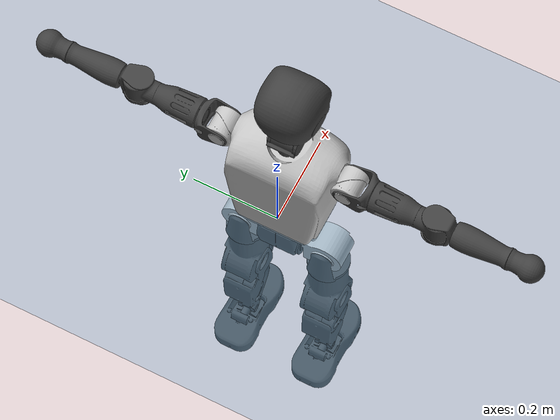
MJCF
<mujoco model="T1">
  <compiler angle="radian" assetdir="assets" balanceinertia="true" inertiafromgeom="false"/>

  <option timestep="0.005" density="1.2" viscosity="2e-05"/>

  <size nkey="1"/>

  <visual>
    <quality shadowsize="8192"/>
    <map shadowclip="0.5"/>
  </visual>

  <default>
    <default class="/">
      <joint armature="0.01" damping="0.01" frictionloss="0.1"/>
      <geom contype="0" conaffinity="0" group="1" solref="-1000 -80"/>
      <site size="0.01 0.005 0.005" group="5"/>
      <general forcelimited="true" biastype="affine" gainprm="25" biasprm="0 -25 -0.6"/>
      <default class="t1">
        <geom rgba="0.25 0.25 0.25 1"/>
        <default class="visual">
          <geom type="mesh" group="2"/>
        </default>
        <default class="collision">
          <geom group="3"/>
        </default>
        <default class="foot">
          <geom size="0.1115 0.05 0.015" type="box" condim="6" group="4" priority="1" solimp="0.015 1 0.015"/>
        </default>
        <default class="reward_collision_sphere">
          <geom group="5" rgba="1 0 0 1"/>
        </default>
      </default>
    </default>
  </default>

  <asset>
    <texture type="skybox" colorspace="auto" name="//unnamed_texture_0" builtin="gradient" rgb1="0.95 0.95 0.95" rgb2="0.95 0.95 0.95" width="100" height="600"/>
    <texture type="2d" colorspace="auto" name="texplane" builtin="checker" rgb1="0.345 0.575 0.748" rgb2="0.345 0.575 0.748" markrgb="1 1 1" width="512" height="512"/>
    <material name="MatPlane" class="/" texture="texplane" texuniform="true" texrepeat="2 2" specular="0.9"/>
    <mesh name="Trunk" class="/" file="Trunk.stl"/>
    <mesh name="H1" class="/" file="H1.stl"/>
    <mesh name="H2" class="/" file="H2.stl"/>
    <mesh name="AL1" class="/" file="AL1.stl"/>
    <mesh name="AL2" class="/" file="AL2.stl"/>
    <mesh name="AL3" class="/" file="AL3.stl"/>
    <mesh name="left_hand_link" class="/" file="left_hand_link.stl"/>
    <mesh name="AR1" class="/" file="AR1.stl"/>
    <mesh name="AR2" class="/" file="AR2.stl"/>
    <mesh name="AR3" class="/" file="AR3.stl"/>
    <mesh name="right_hand_link" class="/" file="right_hand_link.stl"/>
    <mesh name="Waist" class="/" file="Waist.stl"/>
    <mesh name="Hip_Pitch_Left" class="/" file="Hip_Pitch_Left.stl"/>
    <mesh name="Hip_Roll_Left" class="/" file="Hip_Roll_Left.stl"/>
    <mesh name="Hip_Yaw_Left" class="/" file="Hip_Yaw_Left.stl"/>
    <mesh name="Shank_Left" class="/" file="Shank_Left.stl"/>
    <mesh name="Ankle_Cross_Left" class="/" file="Ankle_Cross_Left.stl"/>
    <mesh name="left_foot_link" class="/" file="left_foot_link.stl"/>
    <mesh name="Hip_Pitch_Right" class="/" file="Hip_Pitch_Right.stl"/>
    <mesh name="Hip_Roll_Right" class="/" file="Hip_Roll_Right.stl"/>
    <mesh name="Hip_Yaw_Right" class="/" file="Hip_Yaw_Right.stl"/>
    <mesh name="Shank_Right" class="/" file="Shank_Right.stl"/>
    <mesh name="Ankle_Cross_Right" class="/" file="Ankle_Cross_Right.stl"/>
    <mesh name="right_foot_link" class="/" file="right_foot_link.stl"/>
  </asset>

  <worldbody>
    <geom name="floor" class="/" size="100 100 0.125" type="plane" group="0" material="MatPlane"/>
    <light name="toplight_shadow" class="/" pos="0 0 5" dir="0.0990148 0.0990148 -0.990148" type="directional" ambient="0.04 0.04 0.04" diffuse="0.55 0.55 0.55" specular="0.12 0.12 0.12"/>
    <light name="toplight_fill" class="/" pos="0 0 5" dir="0.0990148 0.0990148 -0.990148" type="directional" castshadow="false" ambient="0.04 0.04 0.04" diffuse="0.3 0.3 0.3" specular="0.08 0.08 0.08"/>
    <body name="trunk" childclass="t1" pos="3.86255e-05 0.000481916 -0.000375299" quat="1 -4.32131e-05 -2.77609e-05 2.07657e-05">
      <inertial pos="0.0426266 -0.000150187 0.105015" quat="0.999983 0.00123067 -0.00530839 -0.00220633" mass="8.99799" diaginertia="0.0284381 0.0610281 0.0555137"/>
      <joint name="//unnamed_joint_0" type="free" armature="0" damping="0" frictionloss="0"/>
      <geom name="//unnamed_geom_1" class="visual" rgba="0.76 0.76 0.76 1" mesh="Trunk"/>
      <geom name="//unnamed_geom_2" class="collision" size="0.0685349 0.0913798 0.13707" pos="0.0474858 0 0.119854" type="box"/>
      <geom name="//unnamed_geom_3" class="reward_collision_sphere" size="0.105087" pos="0.0474858 0 0.0998784"/>
      <geom name="//unnamed_geom_4" class="reward_collision_sphere" size="0.013707" pos="0.0474858 0.0808504 0"/>
      <geom name="//unnamed_geom_5" class="reward_collision_sphere" size="0.013707" pos="0.0474858 -0.0808504 0"/>
      <geom name="//unnamed_geom_6" class="reward_collision_sphere" size="0.013707" pos="0.0474858 0.101776 0.179781"/>
      <geom name="//unnamed_geom_7" class="reward_collision_sphere" size="0.013707" pos="0.0474858 -0.101776 0.179781"/>
      <site name="imu" pos="0.00015614 0.00134425 0.00354093" size="0.00913798"/>
      <camera name="track" pos="0 -1.90236 0" quat="0.707107 0.707107 0 0" mode="trackcom"/>
      <camera name="ego_camera" pos="0.0965545 0 0.419489" quat="-0.5 -0.5 0.5 0.5"/>
      <body name="H1" pos="0.0487566 0.000679871 0.242813" quat="1 -1.54973e-05 3.30653e-06 1.73178e-05">
        <inertial pos="-0.000949458 -0.00208326 0.0566401" quat="0.763722 -0.0120586 0.00263631 0.645427" mass="0.336534" diaginertia="7.58723e-05 0.000172046 0.000149208"/>
        <joint name="AAHead_yaw" pos="0 0 0" axis="-0.00310001 -0.000724212 0.999995" range="-1.58571 1.59138" armature="0.0092506" damping="0.0102658" frictionloss="0.095155"/>
        <geom name="//unnamed_geom_8" class="visual" mesh="H1"/>
        <body name="H2" pos="-0.000445602 -0.000467748 0.0600765" quat="1 0.000578782 -0.000220004 -0.000248249">
          <inertial pos="0.00636591 -6.45932e-05 0.0980361" quat="0.988359 0.104412 -0.0783798 -0.0781114" mass="0.481039" diaginertia="0.000633365 0.0015202 0.00168671"/>
          <joint name="Head_pitch" pos="0 0 0" axis="-0.00247729 -0.999997 -0.000201931" range="-1.2149 0.348942" armature="0.00899388" damping="0.00650281" frictionloss="0.0902766"/>
          <geom name="//unnamed_geom_9" class="visual" mesh="H2"/>
          <geom name="//unnamed_geom_10" class="collision" size="0.0731039" pos="0.0079143 0 0.109866"/>
          <geom name="//unnamed_geom_11" class="reward_collision_sphere" size="0.0822418" pos="0.0158286 0 0.0998784"/>
        </body>
      </body>
      <body name="AL1" pos="0.0464427 0.100924 0.219545" quat="1 6.37736e-05 0.000399438 6.34877e-05">
        <inertial pos="-0.000854263 0.0433584 -2.96327e-05" quat="0.504297 0.497545 -0.50419 0.493888" mass="0.406519" diaginertia="0.000431874 0.00101167 0.000293786"/>
        <joint name="Left_Shoulder_Pitch" pos="0 0 0" axis="0.000935845 0.999995 -0.00285764" range="-3.29085 1.22036" armature="0.00947389" damping="0.012338" frictionloss="0.095318"/>
        <geom name="//unnamed_geom_12" class="visual" rgba="0.76 0.76 0.76 1" mesh="AL1"/>
        <body name="AL2" pos="0.000706574 0.0446811 -0.000146192" quat="1 6.72105e-06 -0.000251106 -0.000113973">
          <inertial pos="0.00420528 0.0350385 -0.000241932" quat="0.484158 0.511624 -0.490305 0.513257" mass="0.121913" diaginertia="0.000123989 0.000267389 0.000175755"/>
          <joint name="Left_Shoulder_Roll" pos="0 0 0" axis="-1 -0.000290973 0.000397905" stiffness="0.00260761" range="-1.57386 1.73286" armature="0.00877383" damping="0.00282652" frictionloss="0.0896366"/>
          <geom name="//unnamed_geom_13" class="visual" mesh="AL2"/>
          <body name="AL3" pos="0.00170122 0.058616 0.00117997" quat="1 -0.000171228 -5.99243e-05 0.00011588">
            <inertial pos="0.000251396 0.0816375 -0.00105837" quat="0.705692 0.708489 -0.00508561 -0.00400894" mass="0.791405" diaginertia="0.00406289 0.0103048 0.000625342"/>
            <joint name="Left_Elbow_Pitch" pos="0 0 0" axis="0.000208795 -1 -0.00034585" range="-2.26854 2.2904" armature="0.00907745" damping="0.0100631" frictionloss="0.0964188"/>
            <geom name="//unnamed_geom_14" class="visual" mesh="AL3"/>
            <geom name="//unnamed_geom_15" class="collision" size="0.0274139 0.0685349" pos="0 0.047559 0" quat="0.707105 0.707108 0 0" type="cylinder"/>
            <geom name="//unnamed_geom_16" class="reward_collision_sphere" size="0.0328967"/>
            <body name="left_hand_link" pos="0.00146961 0.139542 0.00140507" quat="1 -0.000355891 -0.000141425 0.000261257">
              <inertial pos="-0.000840045 0.103775 0.000122821" quat="0.707403 0.706809 -0.00110713 -0.000330418" mass="0.252619" diaginertia="0.0025605 0.00630785 0.000213153"/>
              <joint name="Left_Elbow_Yaw" pos="0 0 0" axis="0.0035318 -0.000327949 0.999994" range="-2.42695 0.0243091" armature="0.00916548" damping="0.00749909" frictionloss="0.0870451"/>
              <geom name="//unnamed_geom_17" class="visual" mesh="left_hand_link"/>
              <geom name="//unnamed_geom_18" class="collision" size="0.0274139 0.0799573" pos="0 0.123654 0" quat="0.707105 0.707108 0 0" type="cylinder"/>
              <geom name="//unnamed_geom_19" class="reward_collision_sphere" size="0.0456899"/>
              <geom name="//unnamed_geom_20" class="reward_collision_sphere" size="0.0319829" pos="0 0.10463 0"/>
              <geom name="//unnamed_geom_21" class="reward_collision_sphere" size="0.0319829" pos="0 0.204504 0"/>
            </body>
          </body>
        </body>
      </body>
      <body name="AR1" pos="0.0448671 -0.0996115 0.217908" quat="1 5.38654e-05 0.000296251 -0.000130337">
        <inertial pos="-0.000841369 -0.0433289 -0.000446804" quat="0.504379 0.495688 -0.504071 0.495791" mass="0.39971" diaginertia="0.000425963 0.00101892 0.000292086"/>
        <joint name="Right_Shoulder_Pitch" pos="0 0 0" axis="-0.00792546 -0.999962 0.00369547" range="-1.22728 3.3224" armature="0.00891912" damping="0.00239158" frictionloss="0.0873859"/>
        <geom name="//unnamed_geom_22" class="visual" rgba="0.76 0.76 0.76 1" mesh="AR1"/>
        <body name="AR2" pos="0.000493864 -0.0437627 0.000210468" quat="1 -4.70229e-05 -3.53948e-05 -8.4428e-05">
          <inertial pos="0.00261282 -0.0360272 0.00100571" quat="0.510964 0.487443 -0.511576 0.489494" mass="0.124275" diaginertia="0.000125272 0.000274435 0.000177523"/>
          <joint name="Right_Shoulder_Roll" pos="0 0 0" axis="-0.999941 0.00189821 -0.0107312" range="-1.73591 1.56256" armature="0.00890056" damping="0.00722788" frictionloss="0.0909209"/>
          <geom name="//unnamed_geom_23" class="visual" mesh="AR2"/>
          <body name="AR3" pos="-0.000659147 -0.0575833 0.000796207" quat="1 -0.000425342 0.000111926 3.5145e-05">
            <inertial pos="-0.000527736 -0.0815591 -0.000225006" quat="0.708654 0.705545 -0.00170446 -0.00361033" mass="0.790354" diaginertia="0.00407153 0.0101744 0.000627891"/>
            <joint name="Right_Elbow_Pitch" pos="0 0 0" axis="0.000478042 1 0.000862067" range="-2.26526 2.26544" armature="0.00925477" damping="0.00797623" frictionloss="0.0913533"/>
            <geom name="//unnamed_geom_24" class="visual" mesh="AR3"/>
            <geom name="//unnamed_geom_25" class="collision" size="0.0274139 0.0685349" pos="0 -0.047559 0" quat="0.707105 0.707108 0 0" type="cylinder"/>
            <geom name="//unnamed_geom_26" class="reward_collision_sphere" size="0.0328967"/>
            <body name="right_hand_link" pos="-8.26114e-05 -0.139953 -0.000543288" quat="1 9.69523e-05 5.66078e-05 -0.000120268">
              <inertial pos="-0.000635754 -0.104264 9.87323e-05" quat="0.706208 0.707993 -7.11508e-05 0.00404546" mass="0.248705" diaginertia="0.00257321 0.00635517 0.000215588"/>
              <joint name="Right_Elbow_Yaw" pos="0 0 0" axis="0.00016743 0.000101199 1" range="-0.0124659 2.442" armature="0.0089501" damping="0.00760431" frictionloss="0.0908588"/>
              <geom name="//unnamed_geom_27" class="visual" mesh="right_hand_link"/>
              <geom name="//unnamed_geom_28" class="collision" size="0.0274139 0.0799573" pos="0 -0.123654 0" quat="0.707105 0.707108 0 0" type="cylinder"/>
              <geom name="//unnamed_geom_29" class="reward_collision_sphere" size="0.0456899"/>
              <geom name="//unnamed_geom_30" class="reward_collision_sphere" size="0.0319829" pos="0 -0.10463 0"/>
              <geom name="//unnamed_geom_31" class="reward_collision_sphere" size="0.0319829" pos="0 -0.204504 0"/>
            </body>
          </body>
        </body>
      </body>
      <body name="Waist" pos="0.0484399 -0.00110636 -0.11479" quat="1 1.86099e-06 3.83792e-05 0.00015955">
        <inertial pos="0.00211425 -0.000408027 0.00790813" quat="0.983681 0.000277033 -0.179905 0.0024782" mass="1.92549" diaginertia="0.00162935 0.00405417 0.00466283"/>
        <joint name="Waist" pos="0 0 0" axis="-0.00184098 0.0030234 0.999994" range="-1.56631 1.57225" armature="0.00904893" damping="0.0112545" frictionloss="0.0878094"/>
        <geom name="//unnamed_geom_32" class="visual" mesh="Waist"/>
        <body name="Hip_Pitch_Left" pos="-0.000690278 0.10019 2.48784e-05" quat="1 -9.31752e-05 -0.000218312 5.40687e-05">
          <inertial pos="0.000369671 -0.00705301 -0.0179848" quat="0.974607 0.223128 0.0185982 0.00294808" mass="0.779616" diaginertia="0.000564262 0.00116481 0.00127409"/>
          <joint name="Left_Hip_Pitch" pos="0 0 0" axis="-0.000729402 0.999993 0.00366996" range="-1.81158 1.56786" armature="0.00927661" damping="0.0101061" frictionloss="0.0884385"/>
          <geom name="//unnamed_geom_33" class="visual" rgba="0.76 0.76 0.76 1" mesh="Hip_Pitch_Left"/>
          <body name="Hip_Roll_Left" pos="0.00108209 -0.000757151 -0.0211588" quat="1 -0.000695501 2.79567e-05 0.000411434">
            <inertial pos="0.000682305 0.000176029 -0.0535468" quat="0.710046 -0.00827388 -0.00218593 0.704103" mass="0.294725" diaginertia="0.000543978 0.00119591 0.000516478"/>
            <joint name="Left_Hip_Roll" pos="0 0 0" axis="-0.999988 0.00345032 0.00347501" stiffness="0.000327942" range="-1.55909 0.21433" armature="0.00931874" damping="0.0122391" frictionloss="0.0913214"/>
            <geom name="//unnamed_geom_34" class="visual" mesh="Hip_Roll_Left"/>
            <geom name="//unnamed_geom_35" class="reward_collision_sphere" size="0.0502589"/>
            <body name="Hip_Yaw_Left" pos="0.0021796 -0.000669159 -0.0821374" quat="1 -0.000200754 -0.000493991 0.000135006">
              <inertial pos="-0.00486212 -0.000814396 -0.0883305" quat="0.69828 -0.0326995 -0.0304971 0.714427" mass="1.65291" diaginertia="0.0080363 0.0196516 0.00255873"/>
              <joint name="Left_Hip_Yaw" pos="0 0 0" axis="-0.006242 -0.00211801 -0.999978" range="-0.9994 0.99093" armature="0.00937229" damping="0.00796292" frictionloss="0.0872011"/>
              <geom name="//unnamed_geom_36" class="visual" mesh="Hip_Yaw_Left"/>
              <geom name="//unnamed_geom_37" class="collision" size="0.0456899 0.0731039" type="cylinder"/>
              <body name="Shank_Left" pos="-0.0117114 -0.000439927 -0.135239" quat="1 1.2158e-05 -6.20744e-06 1.34602e-05">
                <inertial pos="-0.00464228 0.000284177 -0.124285" quat="0.997685 0.000865354 -0.0221876 0.0642716" mass="1.33949" diaginertia="0.0108444 0.0272325 0.00186356"/>
                <joint name="Left_Knee_Pitch" pos="0 0 0" axis="-0.00148686 0.999998 -0.00131843" range="-0.0199307 2.32388" armature="0.00907819" damping="0.00931205" frictionloss="0.0928315"/>
                <geom name="//unnamed_geom_38" class="visual" mesh="Shank_Left"/>
                <geom name="//unnamed_geom_39" class="collision" size="0.0456899 0.0685349" pos="0 0 -0.119854" type="cylinder"/>
                <geom name="//unnamed_geom_40" class="reward_collision_sphere" size="0.0593969"/>
                <body name="Ankle_Cross_Left" pos="-0.000396663 0.000116575 -0.279048" quat="1 -0.000328749 0.000117392 0.000236167">
                  <inertial pos="-0.00328127 8.7088e-05 -0.00704406" quat="0.442845 0.551319 0.550758 0.443398" mass="0.0563271" diaginertia="8.95092e-06 2.02808e-05 1.1336e-05"/>
                  <joint name="Left_Ankle_Pitch" pos="0 0 0" axis="-0.00111388 0.999989 -0.00466021" range="-0.863453 0.341857" armature="0.00900475" damping="0.00401238" frictionloss="0.093998"/>
                  <geom name="//unnamed_geom_41" class="visual" mesh="Ankle_Cross_Left"/>
                  <body name="left_foot_link" pos="-0.000620882 -0.000922344 -0.0120755" quat="1 0.000119503 -2.02537e-05 -0.000135827">
                    <inertial pos="-0.000442545 3.22629e-05 -0.00894799" quat="4.6046e-05 0.618851 0.00328846 0.785502" mass="0.518186" diaginertia="0.000852018 0.00183366 0.00214765"/>
                    <joint name="Left_Ankle_Roll" pos="0 0 0" axis="-0.999999 0.00126159 0.000420227" range="-0.431306 0.456404" armature="0.00964519" damping="0.0091423" frictionloss="0.0892815"/>
                    <geom name="//unnamed_geom_42" class="visual" mesh="left_foot_link"/>
                    <geom name="left_foot" class="foot" size="0.103187 0.0435808 0.0140253" pos="0.0079143 0 -0.0149818"/>
                    <geom name="//unnamed_geom_44" class="reward_collision_sphere" size="0.0475175" pos="0.0079143 0 -0.0149818"/>
                    <geom name="//unnamed_geom_45" class="reward_collision_sphere" size="0.0274139" pos="0.0751859 -0.0218772 -0.0149818"/>
                    <geom name="//unnamed_geom_46" class="reward_collision_sphere" size="0.0274139" pos="-0.0554001 -0.0218772 -0.0149818"/>
                    <site name="left_foot" class="foot" pos="0.0079143 0 -0.0149818" size="0.00913798"/>
                  </body>
                </body>
              </body>
            </body>
          </body>
        </body>
        <body name="Hip_Pitch_Right" pos="-0.000582749 -0.100069 6.9133e-05" quat="1 0.000410176 0.000173287 0.000227862">
          <inertial pos="6.72873e-05 0.0076609 -0.0177822" quat="0.972365 -0.232926 0.0151724 -0.00472834" mass="0.795227" diaginertia="0.000565814 0.00115344 0.00125661"/>
          <joint name="Right_Hip_Pitch" pos="0 0 0" axis="-0.000968134 -0.999997 0.00205225" range="-1.56536 1.81786" armature="0.00984887" damping="0.00498732" frictionloss="0.0956285"/>
          <geom name="//unnamed_geom_47" class="visual" rgba="0.76 0.76 0.76 1" mesh="Hip_Pitch_Right"/>
          <body name="Hip_Roll_Right" pos="0.000334835 0.000862232 -0.0194996" quat="1 -0.00042513 0.000161952 -0.000215055">
            <inertial pos="0.00081373 -0.00119139 -0.0531198" quat="0.70721 -0.00632316 -0.00817772 0.706928" mass="0.290202" diaginertia="0.000534202 0.00115516 0.000501894"/>
            <joint name="Right_Hip_Roll" pos="0 0 0" axis="-0.999993 0.000836448 0.00377433" range="-0.203778 1.57147" armature="0.00904798" damping="0.00651232" frictionloss="0.0928191"/>
            <geom name="//unnamed_geom_48" class="visual" mesh="Hip_Roll_Right"/>
            <geom name="//unnamed_geom_49" class="reward_collision_sphere" size="0.0502589"/>
            <body name="Hip_Yaw_Right" pos="0.000161792 0.00026854 -0.0826936" quat="1 1.75249e-05 -6.59948e-05 5.40474e-05">
              <inertial pos="-0.00523754 -0.00179247 -0.0901691" quat="0.715376 -0.0338452 -0.0334338 0.697118" mass="1.60722" diaginertia="0.00783961 0.0193499 0.00253074"/>
              <joint name="Right_Hip_Yaw" pos="0 0 0" axis="0.000271509 0.000175046 -1" stiffness="0.000660032" range="-0.985151 1.00275" armature="0.00893521" damping="0.00655363" frictionloss="0.0915482"/>
              <geom name="//unnamed_geom_50" class="visual" mesh="Hip_Yaw_Right"/>
              <geom name="//unnamed_geom_51" class="collision" size="0.0456899 0.0731039" type="cylinder"/>
              <body name="Shank_Right" pos="-0.0103295 -0.00113606 -0.134998" quat="1 -0.000212166 0.000263832 -3.80217e-05">
                <inertial pos="-0.00525686 -0.000569035 -0.121534" quat="0.999285 2.02152e-05 -0.0245233 -0.0287609" mass="1.37207" diaginertia="0.0107294 0.0274564 0.00195858"/>
                <joint name="Right_Knee_Pitch" pos="0 0 0" axis="-0.00513029 -0.999981 0.00346554" range="-2.36037 -0.0160576" armature="0.00914033" damping="0.00722212" frictionloss="0.0902058"/>
                <geom name="//unnamed_geom_52" class="visual" mesh="Shank_Right"/>
                <geom name="//unnamed_geom_53" class="collision" size="0.0456899 0.0685349" pos="0 0 -0.119854" type="cylinder"/>
                <geom name="//unnamed_geom_54" class="reward_collision_sphere" size="0.0593969"/>
                <body name="Ankle_Cross_Right" pos="0.000659186 -0.000573191 -0.279072" quat="1 -9.25881e-05 7.90353e-05 4.46471e-05">
                  <inertial pos="-0.0030377 0.000458249 -0.00876084" quat="0.442589 0.553156 0.552311 0.439415" mass="0.0555659" diaginertia="8.8193e-06 1.98266e-05 1.109e-05"/>
                  <joint name="Right_Ankle_Pitch" pos="0 0 0" axis="0.000152258 -0.999999 0.00161703" range="-0.362617 0.857562" armature="0.00908377" damping="0.00800949" frictionloss="0.0921948"/>
                  <geom name="//unnamed_geom_55" class="visual" mesh="Ankle_Cross_Right"/>
                  <body name="right_foot_link" pos="0.000798241 -0.00112802 -0.011917" quat="1 -0.000132551 -0.000158967 0.000268308">
                    <inertial pos="-0.00142596 0.000478912 -0.00926757" quat="0.00019861 0.621197 0.00292425 0.783649" mass="0.519781" diaginertia="0.000835697 0.00185228 0.00218657"/>
                    <joint name="Right_Ankle_Roll" pos="0 0 0" axis="-1 -0.00056687 -1.00611e-05" range="-0.447312 0.438339" armature="0.00870488" damping="0.0141522" frictionloss="0.0900752"/>
                    <geom name="//unnamed_geom_56" class="visual" mesh="right_foot_link"/>
                    <geom name="right_foot" class="foot" size="0.0985012 0.0455245 0.0140639" pos="0.0079143 0 -0.0149818"/>
                    <geom name="//unnamed_geom_58" class="reward_collision_sphere" size="0.0365519"/>
                    <geom name="//unnamed_geom_59" class="reward_collision_sphere" size="0.0274139" pos="0.0079143 0 -0.0149818"/>
                    <geom name="//unnamed_geom_60" class="reward_collision_sphere" size="0.0274139" pos="0.0751859 0.0218772 -0.0149818"/>
                    <geom name="//unnamed_geom_61" class="reward_collision_sphere" size="0.0274139" pos="-0.0554001 0.0218772 -0.0149818"/>
                    <site name="right_foot" class="foot" pos="0.0079143 0 -0.0149818" size="0.00913798"/>
                  </body>
                </body>
              </body>
            </body>
          </body>
        </body>
      </body>
    </body>
  </worldbody>

  <contact>
    <pair class="/" geom1="floor" geom2="left_foot" name="//unnamed_contact_0"/>
    <pair class="/" geom1="floor" geom2="right_foot" name="//unnamed_contact_1"/>
  </contact>

  <actuator>
    <general name="AAHead_yaw" class="/" joint="AAHead_yaw" forcerange="-6.24394 6.24394" gainprm="22.8701" biasprm="0 -22.8701 -0.549336"/>
    <general name="Head_pitch" class="/" joint="Head_pitch" forcerange="-6.27303 6.27303" gainprm="22.8701" biasprm="0 -22.8701 -0.549336"/>
    <general name="Left_Shoulder_Pitch" class="/" joint="Left_Shoulder_Pitch" forcerange="-16.8216 16.8216" gainprm="22.8701" biasprm="0 -22.8701 -0.549336"/>
    <general name="Left_Shoulder_Roll" class="/" joint="Left_Shoulder_Roll" forcerange="-16.538 16.538" gainprm="22.8701" biasprm="0 -22.8701 -0.549336"/>
    <general name="Left_Elbow_Pitch" class="/" joint="Left_Elbow_Pitch" forcerange="-16.8998 16.8998" gainprm="22.8701" biasprm="0 -22.8701 -0.549336"/>
    <general name="Left_Elbow_Yaw" class="/" joint="Left_Elbow_Yaw" forcerange="-17.0449 17.0449" gainprm="22.8701" biasprm="0 -22.8701 -0.549336"/>
    <general name="Right_Shoulder_Pitch" class="/" joint="Right_Shoulder_Pitch" forcerange="-15.9751 15.9751" gainprm="22.8701" biasprm="0 -22.8701 -0.549336"/>
    <general name="Right_Shoulder_Roll" class="/" joint="Right_Shoulder_Roll" forcerange="-16.6363 16.6363" gainprm="22.8701" biasprm="0 -22.8701 -0.549336"/>
    <general name="Right_Elbow_Pitch" class="/" joint="Right_Elbow_Pitch" forcerange="-16.956 16.956" gainprm="22.8701" biasprm="0 -22.8701 -0.549336"/>
    <general name="Right_Elbow_Yaw" class="/" joint="Right_Elbow_Yaw" forcerange="-15.9439 15.9439" gainprm="22.8701" biasprm="0 -22.8701 -0.549336"/>
    <general name="Waist" class="/" joint="Waist" forcerange="-27.0765 27.0765" gainprm="22.8701" biasprm="0 -22.8701 -0.549336"/>
    <general name="Left_Hip_Pitch" class="/" joint="Left_Hip_Pitch" forcerange="-41.6684 41.6684" gainprm="22.8701" biasprm="0 -22.8701 -0.549336"/>
    <general name="Left_Hip_Roll" class="/" joint="Left_Hip_Roll" forcerange="-27.8218 27.8218" gainprm="22.8701" biasprm="0 -22.8701 -0.549336"/>
    <general name="Left_Hip_Yaw" class="/" joint="Left_Hip_Yaw" forcerange="-26.1601 26.1601" gainprm="22.8701" biasprm="0 -22.8701 -0.549336"/>
    <general name="Left_Knee_Pitch" class="/" joint="Left_Knee_Pitch" forcerange="-53.6938 53.6938" gainprm="22.8701" biasprm="0 -22.8701 -0.549336"/>
    <general name="Left_Ankle_Pitch" class="/" joint="Left_Ankle_Pitch" forcerange="-17.1886 17.1886" gainprm="22.8701" biasprm="0 -22.8701 -0.549336"/>
    <general name="Left_Ankle_Roll" class="/" joint="Left_Ankle_Roll" forcerange="-13.7897 13.7897" gainprm="22.8701" biasprm="0 -22.8701 -0.549336"/>
    <general name="Right_Hip_Pitch" class="/" joint="Right_Hip_Pitch" forcerange="-41.2118 41.2118" gainprm="22.8701" biasprm="0 -22.8701 -0.549336"/>
    <general name="Right_Hip_Roll" class="/" joint="Right_Hip_Roll" forcerange="-28.3329 28.3329" gainprm="22.8701" biasprm="0 -22.8701 -0.549336"/>
    <general name="Right_Hip_Yaw" class="/" joint="Right_Hip_Yaw" forcerange="-28.4212 28.4212" gainprm="22.8701" biasprm="0 -22.8701 -0.549336"/>
    <general name="Right_Knee_Pitch" class="/" joint="Right_Knee_Pitch" forcerange="-54.9237 54.9237" gainprm="22.8701" biasprm="0 -22.8701 -0.549336"/>
    <general name="Right_Ankle_Pitch" class="/" joint="Right_Ankle_Pitch" forcerange="-17.6788 17.6788" gainprm="22.8701" biasprm="0 -22.8701 -0.549336"/>
    <general name="Right_Ankle_Roll" class="/" joint="Right_Ankle_Roll" forcerange="-13.3232 13.3232" gainprm="22.8701" biasprm="0 -22.8701 -0.549336"/>
  </actuator>

  <sensor>
    <gyro site="imu" name="imu_angular_velocity"/>
    <velocimeter site="imu" name="imu_linear_velocity"/>
    <framelinvel objtype="site" objname="left_foot" name="left_foot_global_linear_velocity"/>
    <framelinvel objtype="site" objname="right_foot" name="right_foot_global_linear_velocity"/>
  </sensor>

  <keyframe>
    <key name="home" qpos="0 0 0.6385 1 0 0 0 0 0 0 1.4 0 -0.4 0 -1.4 0 0.4 0 -0.4 0 0 0.8 -0.4 0 0.4 0 0 -0.8 0.4 0"/>
  </keyframe>
</mujoco>
